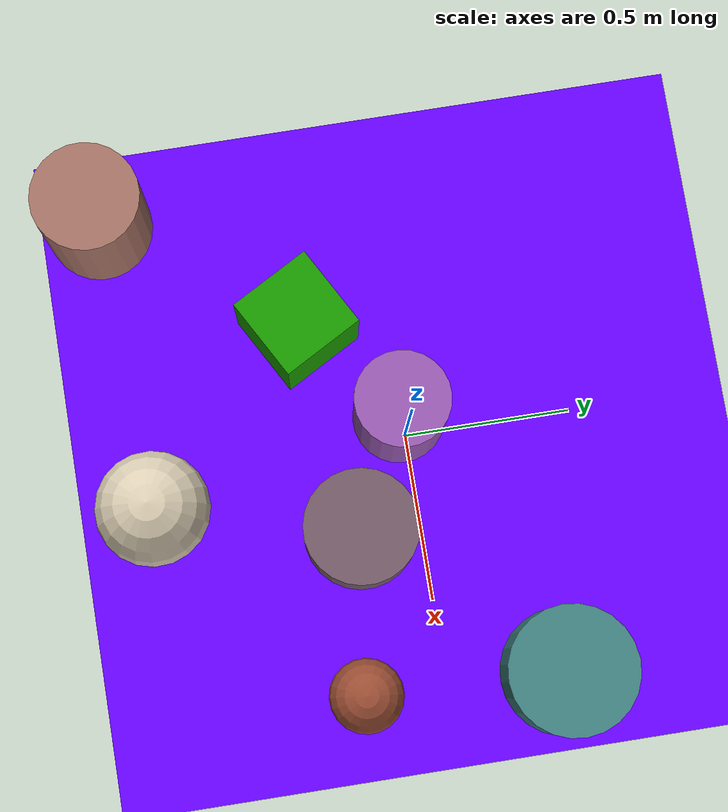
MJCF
<mujoco>
   <asset>
<texture type="skybox" builtin="gradient" rgb1="0.7 0.4 0.7" rgb2="0.6 0.7 0.1" width="256" height="256"/>
<texture name="gradient_0" builtin="gradient" rgb1="0.1 0.1 0.1" rgb2="0.4 0.9 0.9" width="200" height="200"/>
<texture name="flat_1" builtin="flat" rgb1="0.6 0.3 0.2" rgb2="0.6 0.3 0.2"  width="200" height="200"/>
<texture name="flat_2" builtin="flat" rgb1="0.1 0.6 0.0" rgb2="0.1 0.6 0.0"  width="200" height="200"/>
<texture name="gradient_3" builtin="gradient" rgb1="0.7 0.7 0.7" rgb2="1.0 0.9 0.7" width="200" height="200"/>
<texture name="checker_4" builtin="checker" rgb1="0.8 0.0 0.7" rgb2="0.1 0.7 0.1" width="200" height="200"/>
<texture name="gradient_5" builtin="gradient" rgb1="0.8 0.4 0.7" rgb2="0.4 0.3 0.7" width="200" height="200"/>
<texture name="checker_6" builtin="checker" rgb1="0.8 0.8 0.6" rgb2="0.5 0.1 0.2" width="200" height="200"/><material name="gradient_0_mat" reflectance="0" texture="gradient_0" texuniform="true"/>
<material name="flat_1_mat" reflectance="0" texture="flat_1" texuniform="true"/>
<material name="flat_2_mat" reflectance="0" texture="flat_2" texuniform="true"/>
<material name="gradient_3_mat" reflectance="0" texture="gradient_3" texuniform="true"/>
<material name="checker_4_mat" reflectance="0" texrepeat="2 2" texture="checker_4" texuniform="false" />
<material name="gradient_5_mat" reflectance="0" texture="gradient_5" texuniform="true"/>
<material name="checker_6_mat" reflectance="0" texrepeat="3 3" texture="checker_6" texuniform="false" />
   </asset>

   <worldbody>
      <light diffuse=".9 .9 .9" pos="0 0 3" dir="0 0 -1"/>
     <geom type="plane" size="1 1 0.1" rgba="0.4 0.0 1.0 1"/>
<geom type="cylinder" pos="0.77 0.35 0.12" size="0.19 0.12 0.12" material="gradient_0_mat" euler="0 0 1" />
<geom type="sphere" pos="0.75 -0.24 0.11" size="0.11 0.11 0.11" material="flat_1_mat" euler="0 0 66" />
<geom type="box" pos="-0.37 -0.27 0.13" size="0.13 0.13 0.13" material="flat_2_mat" euler="0 0 29" />
<geom type="sphere" pos="0.12 -0.77 0.17" size="0.17 0.17 0.17" material="gradient_3_mat" euler="0 0 48" />
<geom type="cylinder" pos="0.27 -0.18 0.11" size="0.17 0.11 0.11" material="checker_4_mat" euler="0 0 66" />
<geom type="cylinder" pos="-0.06 -0.01 0.17" size="0.14 0.17 0.17" material="gradient_5_mat" euler="0 0 86" />
<geom type="cylinder" pos="-0.78 -0.82 0.18" size="0.16 0.18 0.18" material="checker_6_mat" euler="0 0 55" /><camera euler="60 0 180" fovy="60" name="camera1" pos="-0.2 -1.5 1"></camera>   </worldbody>
</mujoco>
